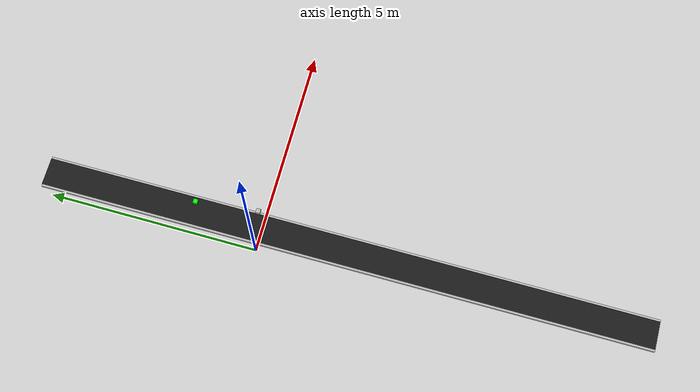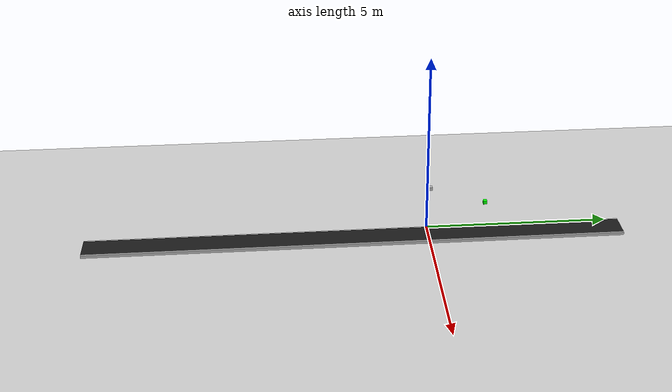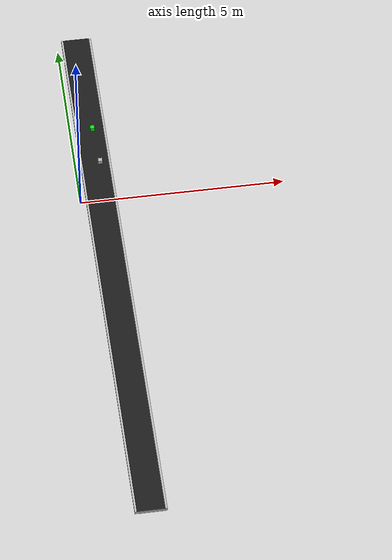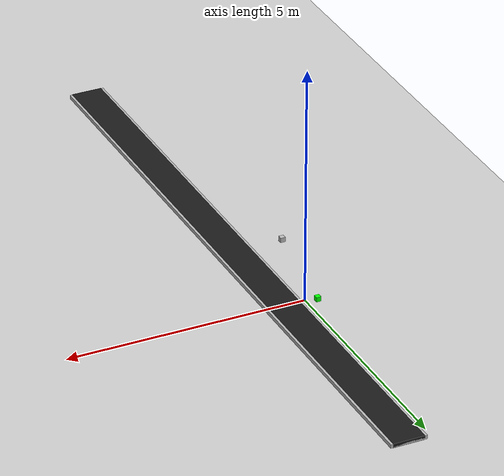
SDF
<?xml version="1.0" ?>
<sdf version="1.6">
  <world name="default">
    <include>
      <uri>model://ground_plane</uri>
    </include>

    <include>
      <uri>model://sun</uri>
    </include>

    <physics type="ode">
      <real_time_update_rate>1000.0</real_time_update_rate>
    </physics>

    <!-- Adding Conveyor plugin -->

<!-- SDF conveyor belt: -->

   <model name="conveyor_belt">

     <model name="conveyor_belt_fixed">
       <static>true</static>
       <pose>0.5 -2 0.05 0 0 -1.57079</pose>
       <link name="link">
         <pose>0 0 0 0 0 0</pose>
         <!--Uncomment for debugging -->
         <visual name="belt_fixed_visual">
           <geometry>
             <box>
               <size>14.62206 0.75461 0.07862</size>
             </box>
           </geometry>
         </visual>
       </link>

     </model>

     <model name="conveyor_belt_moving">
       <allow_auto_disable>0</allow_auto_disable>
       <static>false</static>
       <pose>0.5 -2 0.05 0 0 -1.57079</pose>
       <link name="belt">
         <pose>0 0 0 0 0 0</pose>
         <inertial>
           <inertia>
             <ixx>3.8185</ixx>
             <ixy>0</ixy>
             <ixz>0</ixz>
             <iyy>1781.5</iyy>
             <iyz>0</iyz>
             <izz>1784.72</izz>
           </inertia>
           <mass>100</mass>
         </inertial>

         <!--Uncomment for debugging -->

         <visual name="belt_visual">
           <geometry>
             <box>
               <size>14.62206 0.65461 0.08862</size>
             </box>
           </geometry>
            <material>
              <ambient>0.1 0.1 0.1 1</ambient>
            </material>
         </visual>

         <collision name="belt_collision">
           <geometry>
             <box>
               <size>14.62206 0.65461 0.08862</size>
             </box>
           </geometry>
           <surface>
             <friction>
               <ode>
                 <mu>1000.0</mu>
                 <mu2>1000.0</mu2>
               </ode>
               <torsional>
                 <coefficient>1000.0</coefficient>
                 <patch_radius>0.2</patch_radius>
               </torsional>
             </friction>
           </surface>
         </collision>
       </link>
     </model>

     <joint name="belt_joint" type="prismatic">
       <parent>conveyor_belt_fixed::link</parent>
       <child>conveyor_belt_moving::belt</child>
       <axis>
         <xyz>1 0 0</xyz>
         <limit>
           <lower>0</lower>
           <upper>1.0</upper>
         </limit>
       </axis>
     </joint>

     <plugin name="conveyor_belt_plugin" filename="libROSConveyorBeltPlugin.so">
       <robot_namespace>/robot_ns</robot_namespace>
       <link>conveyor_belt::conveyor_belt_moving::belt</link>
       <power>50.0</power>
       <update_rate>10</update_rate>
       <max_velocity>0.2</max_velocity>
     </plugin>
    </model>

<!-- object model -->

    <model name="object">
        <pose>0.48 1.5 1.0 0 0 0</pose>
        <static>false</static>
        <link name="obj_link">
          <inertial>
            <mass>1.0</mass>
            <inertia> <!-- inertias are tricky to compute -->
              <!-- http://gazebosim.org/tutorials?tut=inertia&cat=build_robot -->
              <ixx>0.00166</ixx>       <!-- for a box: ixx = 0.083 * mass * (y*y + z*z) -->
              <ixy>0.0</ixy>         <!-- for a box: ixy = 0 -->
              <ixz>0.0</ixz>         <!-- for a box: ixz = 0 -->
              <iyy>0.00166</iyy>       <!-- for a box: iyy = 0.083 * mass * (x*x + z*z) -->
              <iyz>0.0</iyz>         <!-- for a box: iyz = 0 -->
              <izz>0.00166</izz>       <!-- for a box: izz = 0.083 * mass * (x*x + y*y) -->
            </inertia>
          </inertial>
          <collision name="collision">
            <geometry>
              <box>
                <size>0.1 0.1 0.1</size>
              </box>
            </geometry>
            <surface>
             <friction>
               <ode>
                 <mu>2.0</mu>
                 <mu2>2.0</mu2>
               </ode>
               <torsional>
                 <coefficient>1000.0</coefficient>
                 <patch_radius>0.2</patch_radius>
               </torsional>
             </friction>
           </surface>
          </collision>
          <visual name="visual">
            <geometry>
              <box>
                <size>0.1 0.1 0.1</size>
              </box>
            </geometry>
            <material>
              <ambient>0 1 0 1</ambient>
            </material>
          </visual>
        </link>
      </model>

      <!-- Add camera -->
      <model name="camera">
        <static>true</static>
        <link name="camera_link">
          <pose>0.5 0.0 1.5 0 1.570 0</pose>
          <inertial>
            <mass>0.1</mass>
            <inertia>
              <ixx>0.000166667</ixx>
              <iyy>0.000166667</iyy>
              <izz>0.000166667</izz>
            </inertia>
          </inertial>
          <collision name="collision">
            <geometry>
              <box>
                <size>0.1 0.1 0.1</size>
              </box>
            </geometry>
          </collision>
          <visual name="visual">
            <geometry>
              <box>
                <size>0.1 0.1 0.1</size>
              </box>
            </geometry>
          </visual>
          <sensor type="camera" name="camera1">
            <update_rate>30.0</update_rate>
            <visualize>true</visualize>
            <always_on>1</always_on>
            <camera name="head">
              <horizontal_fov>1.3962634</horizontal_fov>
              <image>
                <width>320</width>
                <height>240</height>
                <format>R8G8B8</format>
              </image>
              <clip>
                <near>0.1</near>
                <far>100</far>
              </clip>

</camera>
            <plugin name="camera_controller" filename="libgazebo_ros_camera.so">
              <alwaysOn>true</alwaysOn>
              <updateRate>30.0</updateRate>
              <cameraName>camera1</cameraName>
              <imageTopicName>image_raw</imageTopicName>
              <cameraInfoTopicName>camera_info</cameraInfoTopicName>
              <frameName>camera_link</frameName>
              <hackBaseline>0.07</hackBaseline>
              <distortionK1>0.0</distortionK1>
              <distortionK2>0.0</distortionK2>
              <distortionK3>0.0</distortionK3>
              <distortionT1>0.0</distortionT1>
              <distortionT2>0.0</distortionT2>
            </plugin>

          </sensor>
        </link>
      </model>

    <gravity>
      0.0 0.0 -9.6
    </gravity>

    <gui fullscreen='0'>
    </gui>

  </world>
</sdf>
